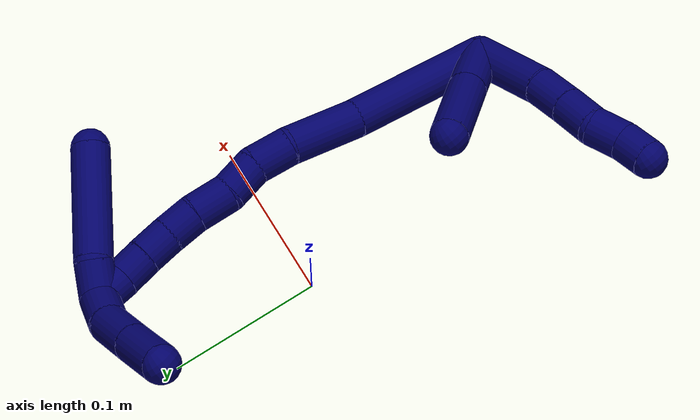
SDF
<sdf version="1.7">
 <world name="default">
  <model name="7">
   <static>0</static>
   <link name="7">
    <collision name="collision-cylinder-e_1_2_8">
     <pose>-0.022766 -0.010237 -0.013585 2.49582 -0.929106 -1.96418</pose>
     <geometry><cylinder><radius>0.0125</radius><length>0.056839</length></cylinder></geometry>
     <surface>
      <friction><ode><mu>1.16</mu><mu2>1.16</mu2><slip1>0</slip1><slip2>0</slip2></ode></friction>
      <contact><ode><kp>1e+06</kp><kd>1</kd><max_vel>0</max_vel><min_depth>0.001</min_depth></ode></contact>
     </surface>
    </collision>
    <visual name="visual-cylinder-e_1_2_8">
     <pose>-0.022766 -0.010237 -0.013585 2.49582 -0.929106 -1.96418</pose>
     <geometry><cylinder><radius>0.0125</radius><length>0.056839</length></cylinder></geometry>
     <material><ambient>0.003922 0 0.403922 1</ambient></material>
    </visual>
    <collision name="collision-cylinder-e_2_8_9">
     <pose>-0.055529 -0.023787 -0.034579 2.72114 -0.888887 -2.2991</pose>
     <geometry><cylinder><radius>0.0125</radius><length>0.025753</length></cylinder></geometry>
     <surface>
      <friction><ode><mu>1.16</mu><mu2>1.16</mu2><slip1>0</slip1><slip2>0</slip2></ode></friction>
      <contact><ode><kp>1e+06</kp><kd>1</kd><max_vel>0</max_vel><min_depth>0.001</min_depth></ode></contact>
     </surface>
    </collision>
    <visual name="visual-cylinder-e_2_8_9">
     <pose>-0.055529 -0.023787 -0.034579 2.72114 -0.888887 -2.2991</pose>
     <geometry><cylinder><radius>0.0125</radius><length>0.025753</length></cylinder></geometry>
     <material><ambient>0.003922 0 0.403922 1</ambient></material>
    </visual>
    <collision name="collision-cylinder-e_3_9_10">
     <pose>-0.075103 -0.029929 -0.049197 2.76762 -0.890806 -2.38696</pose>
     <geometry><cylinder><radius>0.0125</radius><length>0.024632</length></cylinder></geometry>
     <surface>
      <friction><ode><mu>1.16</mu><mu2>1.16</mu2><slip1>0</slip1><slip2>0</slip2></ode></friction>
      <contact><ode><kp>1e+06</kp><kd>1</kd><max_vel>0</max_vel><min_depth>0.001</min_depth></ode></contact>
     </surface>
    </collision>
    <visual name="visual-cylinder-e_3_9_10">
     <pose>-0.075103 -0.029929 -0.049197 2.76762 -0.890806 -2.38696</pose>
     <geometry><cylinder><radius>0.0125</radius><length>0.024632</length></cylinder></geometry>
     <material><ambient>0.003922 0 0.403922 1</ambient></material>
    </visual>
    <collision name="collision-cylinder-e_4_10_11">
     <pose>-0.090725 -0.037728 -0.064366 2.58338 -0.572244 -1.597</pose>
     <geometry><cylinder><radius>0.0125</radius><length>0.022326</length></cylinder></geometry>
     <surface>
      <friction><ode><mu>1.16</mu><mu2>1.16</mu2><slip1>0</slip1><slip2>0</slip2></ode></friction>
      <contact><ode><kp>1e+06</kp><kd>1</kd><max_vel>0</max_vel><min_depth>0.001</min_depth></ode></contact>
     </surface>
    </collision>
    <visual name="visual-cylinder-e_4_10_11">
     <pose>-0.090725 -0.037728 -0.064366 2.58338 -0.572244 -1.597</pose>
     <geometry><cylinder><radius>0.0125</radius><length>0.022326</length></cylinder></geometry>
     <material><ambient>0.003922 0 0.403922 1</ambient></material>
    </visual>
    <collision name="collision-cylinder-e_5_11_6">
     <pose>-0.10412 -0.045529 -0.078847 2.73218 -0.802052 -2.23091</pose>
     <geometry><cylinder><radius>0.0125</radius><length>0.02045</length></cylinder></geometry>
     <surface>
      <friction><ode><mu>1.16</mu><mu2>1.16</mu2><slip1>0</slip1><slip2>0</slip2></ode></friction>
      <contact><ode><kp>1e+06</kp><kd>1</kd><max_vel>0</max_vel><min_depth>0.001</min_depth></ode></contact>
     </surface>
    </collision>
    <visual name="visual-cylinder-e_5_11_6">
     <pose>-0.10412 -0.045529 -0.078847 2.73218 -0.802052 -2.23091</pose>
     <geometry><cylinder><radius>0.0125</radius><length>0.02045</length></cylinder></geometry>
     <material><ambient>0.003922 0 0.403922 1</ambient></material>
    </visual>
    <collision name="collision-cylinder-e_1_2_12">
     <pose>-0.019712 0.00897 -0.000956 -1.67697 -1.14159 1.24033</pose>
     <geometry><cylinder><radius>0.0125</radius><length>0.043356</length></cylinder></geometry>
     <surface>
      <friction><ode><mu>1.16</mu><mu2>1.16</mu2><slip1>0</slip1><slip2>0</slip2></ode></friction>
      <contact><ode><kp>1e+06</kp><kd>1</kd><max_vel>0</max_vel><min_depth>0.001</min_depth></ode></contact>
     </surface>
    </collision>
    <visual name="visual-cylinder-e_1_2_12">
     <pose>-0.019712 0.00897 -0.000956 -1.67697 -1.14159 1.24033</pose>
     <geometry><cylinder><radius>0.0125</radius><length>0.043356</length></cylinder></geometry>
     <material><ambient>0.003922 0 0.403922 1</ambient></material>
    </visual>
    <collision name="collision-cylinder-e_2_12_5">
     <pose>-0.06521 0.029583 -0.003205 -1.68142 -1.1444 1.2475</pose>
     <geometry><cylinder><radius>0.0125</radius><length>0.056644</length></cylinder></geometry>
     <surface>
      <friction><ode><mu>1.16</mu><mu2>1.16</mu2><slip1>0</slip1><slip2>0</slip2></ode></friction>
      <contact><ode><kp>1e+06</kp><kd>1</kd><max_vel>0</max_vel><min_depth>0.001</min_depth></ode></contact>
     </surface>
    </collision>
    <visual name="visual-cylinder-e_2_12_5">
     <pose>-0.06521 0.029583 -0.003205 -1.68142 -1.1444 1.2475</pose>
     <geometry><cylinder><radius>0.0125</radius><length>0.056644</length></cylinder></geometry>
     <material><ambient>0.003922 0 0.403922 1</ambient></material>
    </visual>
    <collision name="collision-cylinder-e_1_2_13">
     <pose>-0.016479 0.042917 0.012243 -1.2929 -0.353707 0.268116</pose>
     <geometry><cylinder><radius>0.0125</radius><length>0.095149</length></cylinder></geometry>
     <surface>
      <friction><ode><mu>1.16</mu><mu2>1.16</mu2><slip1>0</slip1><slip2>0</slip2></ode></friction>
      <contact><ode><kp>1e+06</kp><kd>1</kd><max_vel>0</max_vel><min_depth>0.001</min_depth></ode></contact>
     </surface>
    </collision>
    <visual name="visual-cylinder-e_1_2_13">
     <pose>-0.016479 0.042917 0.012243 -1.2929 -0.353707 0.268116</pose>
     <geometry><cylinder><radius>0.0125</radius><length>0.095149</length></cylinder></geometry>
     <material><ambient>0.003922 0 0.403922 1</ambient></material>
    </visual>
    <collision name="collision-cylinder-e_2_13_14">
     <pose>-0.042699 0.10667 0.032732 -1.19398 -0.410074 0.28085</pose>
     <geometry><cylinder><radius>0.0125</radius><length>0.048867</length></cylinder></geometry>
     <surface>
      <friction><ode><mu>1.16</mu><mu2>1.16</mu2><slip1>0</slip1><slip2>0</slip2></ode></friction>
      <contact><ode><kp>1e+06</kp><kd>1</kd><max_vel>0</max_vel><min_depth>0.001</min_depth></ode></contact>
     </surface>
    </collision>
    <visual name="visual-cylinder-e_2_13_14">
     <pose>-0.042699 0.10667 0.032732 -1.19398 -0.410074 0.28085</pose>
     <geometry><cylinder><radius>0.0125</radius><length>0.048867</length></cylinder></geometry>
     <material><ambient>0.003922 0 0.403922 1</ambient></material>
    </visual>
    <collision name="collision-cylinder-e_3_14_15">
     <pose>-0.055675 0.139575 0.04351 -1.36387 -0.256554 0.208677</pose>
     <geometry><cylinder><radius>0.0125</radius><length>0.025498</length></cylinder></geometry>
     <surface>
      <friction><ode><mu>1.16</mu><mu2>1.16</mu2><slip1>0</slip1><slip2>0</slip2></ode></friction>
      <contact><ode><kp>1e+06</kp><kd>1</kd><max_vel>0</max_vel><min_depth>0.001</min_depth></ode></contact>
     </surface>
    </collision>
    <visual name="visual-cylinder-e_3_14_15">
     <pose>-0.055675 0.139575 0.04351 -1.36387 -0.256554 0.208677</pose>
     <geometry><cylinder><radius>0.0125</radius><length>0.025498</length></cylinder></geometry>
     <material><ambient>0.003922 0 0.403922 1</ambient></material>
    </visual>
    <collision name="collision-cylinder-e_4_15_16">
     <pose>-0.063799 0.162534 0.045179 -1.65006 -0.420814 0.454422</pose>
     <geometry><cylinder><radius>0.0125</radius><length>0.023938</length></cylinder></geometry>
     <surface>
      <friction><ode><mu>1.16</mu><mu2>1.16</mu2><slip1>0</slip1><slip2>0</slip2></ode></friction>
      <contact><ode><kp>1e+06</kp><kd>1</kd><max_vel>0</max_vel><min_depth>0.001</min_depth></ode></contact>
     </surface>
    </collision>
    <visual name="visual-cylinder-e_4_15_16">
     <pose>-0.063799 0.162534 0.045179 -1.65006 -0.420814 0.454422</pose>
     <geometry><cylinder><radius>0.0125</radius><length>0.023938</length></cylinder></geometry>
     <material><ambient>0.003922 0 0.403922 1</ambient></material>
    </visual>
    <collision name="collision-cylinder-e_5_16_17">
     <pose>-0.072179 0.18551 0.04635 -1.4039 -0.277413 0.235017</pose>
     <geometry><cylinder><radius>0.0125</radius><length>0.025488</length></cylinder></geometry>
     <surface>
      <friction><ode><mu>1.16</mu><mu2>1.16</mu2><slip1>0</slip1><slip2>0</slip2></ode></friction>
      <contact><ode><kp>1e+06</kp><kd>1</kd><max_vel>0</max_vel><min_depth>0.001</min_depth></ode></contact>
     </surface>
    </collision>
    <visual name="visual-cylinder-e_5_16_17">
     <pose>-0.072179 0.18551 0.04635 -1.4039 -0.277413 0.235017</pose>
     <geometry><cylinder><radius>0.0125</radius><length>0.025488</length></cylinder></geometry>
     <material><ambient>0.003922 0 0.403922 1</ambient></material>
    </visual>
    <collision name="collision-cylinder-e_6_17_18">
     <pose>-0.078522 0.207329 0.04862 -1.54675 -0.285058 0.278372</pose>
     <geometry><cylinder><radius>0.0125</radius><length>0.020288</length></cylinder></geometry>
     <surface>
      <friction><ode><mu>1.16</mu><mu2>1.16</mu2><slip1>0</slip1><slip2>0</slip2></ode></friction>
      <contact><ode><kp>1e+06</kp><kd>1</kd><max_vel>0</max_vel><min_depth>0.001</min_depth></ode></contact>
     </surface>
    </collision>
    <visual name="visual-cylinder-e_6_17_18">
     <pose>-0.078522 0.207329 0.04862 -1.54675 -0.285058 0.278372</pose>
     <geometry><cylinder><radius>0.0125</radius><length>0.020288</length></cylinder></geometry>
     <material><ambient>0.003922 0 0.403922 1</ambient></material>
    </visual>
    <collision name="collision-cylinder-e_7_18_19">
     <pose>-0.08505 0.226669 0.048841 -1.57214 -0.365423 0.365904</pose>
     <geometry><cylinder><radius>0.0125</radius><length>0.020575</length></cylinder></geometry>
     <surface>
      <friction><ode><mu>1.16</mu><mu2>1.16</mu2><slip1>0</slip1><slip2>0</slip2></ode></friction>
      <contact><ode><kp>1e+06</kp><kd>1</kd><max_vel>0</max_vel><min_depth>0.001</min_depth></ode></contact>
     </surface>
    </collision>
    <visual name="visual-cylinder-e_7_18_19">
     <pose>-0.08505 0.226669 0.048841 -1.57214 -0.365423 0.365904</pose>
     <geometry><cylinder><radius>0.0125</radius><length>0.020575</length></cylinder></geometry>
     <material><ambient>0.003922 0 0.403922 1</ambient></material>
    </visual>
    <collision name="collision-cylinder-e_8_19_20">
     <pose>-0.092352 0.245683 0.048316 -1.62519 -0.36742 0.387471</pose>
     <geometry><cylinder><radius>0.0125</radius><length>0.020186</length></cylinder></geometry>
     <surface>
      <friction><ode><mu>1.16</mu><mu2>1.16</mu2><slip1>0</slip1><slip2>0</slip2></ode></friction>
      <contact><ode><kp>1e+06</kp><kd>1</kd><max_vel>0</max_vel><min_depth>0.001</min_depth></ode></contact>
     </surface>
    </collision>
    <visual name="visual-cylinder-e_8_19_20">
     <pose>-0.092352 0.245683 0.048316 -1.62519 -0.36742 0.387471</pose>
     <geometry><cylinder><radius>0.0125</radius><length>0.020186</length></cylinder></geometry>
     <material><ambient>0.003922 0 0.403922 1</ambient></material>
    </visual>
    <collision name="collision-cylinder-e_9_20_1">
     <pose>-0.101967 0.263058 0.048654 -1.46462 -0.641738 0.580739</pose>
     <geometry><cylinder><radius>0.0125</radius><length>0.02001</length></cylinder></geometry>
     <surface>
      <friction><ode><mu>1.16</mu><mu2>1.16</mu2><slip1>0</slip1><slip2>0</slip2></ode></friction>
      <contact><ode><kp>1e+06</kp><kd>1</kd><max_vel>0</max_vel><min_depth>0.001</min_depth></ode></contact>
     </surface>
    </collision>
    <visual name="visual-cylinder-e_9_20_1">
     <pose>-0.101967 0.263058 0.048654 -1.46462 -0.641738 0.580739</pose>
     <geometry><cylinder><radius>0.0125</radius><length>0.02001</length></cylinder></geometry>
     <material><ambient>0.003922 0 0.403922 1</ambient></material>
    </visual>
    <collision name="collision-cylinder-e_1_1_21">
     <pose>-0.12158 0.270971 0.045082 3.12875 -1.257 -3.12392</pose>
     <geometry><cylinder><radius>0.0125</radius><length>0.028648</length></cylinder></geometry>
     <surface>
      <friction><ode><mu>1.16</mu><mu2>1.16</mu2><slip1>0</slip1><slip2>0</slip2></ode></friction>
      <contact><ode><kp>1e+06</kp><kd>1</kd><max_vel>0</max_vel><min_depth>0.001</min_depth></ode></contact>
     </surface>
    </collision>
    <visual name="visual-cylinder-e_1_1_21">
     <pose>-0.12158 0.270971 0.045082 3.12875 -1.257 -3.12392</pose>
     <geometry><cylinder><radius>0.0125</radius><length>0.028648</length></cylinder></geometry>
     <material><ambient>0.003922 0 0.403922 1</ambient></material>
    </visual>
    <collision name="collision-cylinder-e_2_21_22">
     <pose>-0.151186 0.265779 0.035607 2.34822 -1.14726 -1.99119</pose>
     <geometry><cylinder><radius>0.0125</radius><length>0.03506</length></cylinder></geometry>
     <surface>
      <friction><ode><mu>1.16</mu><mu2>1.16</mu2><slip1>0</slip1><slip2>0</slip2></ode></friction>
      <contact><ode><kp>1e+06</kp><kd>1</kd><max_vel>0</max_vel><min_depth>0.001</min_depth></ode></contact>
     </surface>
    </collision>
    <visual name="visual-cylinder-e_2_21_22">
     <pose>-0.151186 0.265779 0.035607 2.34822 -1.14726 -1.99119</pose>
     <geometry><cylinder><radius>0.0125</radius><length>0.03506</length></cylinder></geometry>
     <material><ambient>0.003922 0 0.403922 1</ambient></material>
    </visual>
    <collision name="collision-cylinder-e_3_22_4">
     <pose>-0.183622 0.255114 0.02527 2.33339 -1.13565 -1.96046</pose>
     <geometry><cylinder><radius>0.0125</radius><length>0.036292</length></cylinder></geometry>
     <surface>
      <friction><ode><mu>1.16</mu><mu2>1.16</mu2><slip1>0</slip1><slip2>0</slip2></ode></friction>
      <contact><ode><kp>1e+06</kp><kd>1</kd><max_vel>0</max_vel><min_depth>0.001</min_depth></ode></contact>
     </surface>
    </collision>
    <visual name="visual-cylinder-e_3_22_4">
     <pose>-0.183622 0.255114 0.02527 2.33339 -1.13565 -1.96046</pose>
     <geometry><cylinder><radius>0.0125</radius><length>0.036292</length></cylinder></geometry>
     <material><ambient>0.003922 0 0.403922 1</ambient></material>
    </visual>
    <collision name="collision-cylinder-e_1_1_23">
     <pose>-0.103167 0.265956 0.058818 0.498547 0.424108 0.109503</pose>
     <geometry><cylinder><radius>0.0125</radius><length>0.023274</length></cylinder></geometry>
     <surface>
      <friction><ode><mu>1.16</mu><mu2>1.16</mu2><slip1>0</slip1><slip2>0</slip2></ode></friction>
      <contact><ode><kp>1e+06</kp><kd>1</kd><max_vel>0</max_vel><min_depth>0.001</min_depth></ode></contact>
     </surface>
    </collision>
    <visual name="visual-cylinder-e_1_1_23">
     <pose>-0.103167 0.265956 0.058818 0.498547 0.424108 0.109503</pose>
     <geometry><cylinder><radius>0.0125</radius><length>0.023274</length></cylinder></geometry>
     <material><ambient>0.003922 0 0.403922 1</ambient></material>
    </visual>
    <collision name="collision-cylinder-e_2_23_3">
     <pose>-0.073212 0.243722 0.091452 0.634494 0.715525 0.244276</pose>
     <geometry><cylinder><radius>0.0125</radius><length>0.076726</length></cylinder></geometry>
     <surface>
      <friction><ode><mu>1.16</mu><mu2>1.16</mu2><slip1>0</slip1><slip2>0</slip2></ode></friction>
      <contact><ode><kp>1e+06</kp><kd>1</kd><max_vel>0</max_vel><min_depth>0.001</min_depth></ode></contact>
     </surface>
    </collision>
    <visual name="visual-cylinder-e_2_23_3">
     <pose>-0.073212 0.243722 0.091452 0.634494 0.715525 0.244276</pose>
     <geometry><cylinder><radius>0.0125</radius><length>0.076726</length></cylinder></geometry>
     <material><ambient>0.003922 0 0.403922 1</ambient></material>
    </visual>
    <collision name="collision-sphere-3">
     <pose>-0.048045 0.226558 0.114771 0 -0 0</pose>
     <geometry><sphere><radius>0.0125</radius></sphere></geometry>
     <surface>
      <friction><ode><mu>1.16</mu><mu2>1.16</mu2><slip1>0</slip1><slip2>0</slip2></ode></friction>
      <contact><ode><kp>1e+06</kp><kd>1</kd><max_vel>0</max_vel><min_depth>0.001</min_depth></ode></contact>
     </surface>
    </collision>
    <visual name="visual-sphere-3">
     <pose>-0.048045 0.226558 0.114771 0 -0 0</pose>
     <geometry><sphere><radius>0.0125</radius></sphere></geometry>
     <material><ambient>0.003922 0 0.403922 1</ambient></material>
    </visual>
    <collision name="collision-sphere-23">
     <pose>-0.098378 0.260885 0.068133 0 -0 0</pose>
     <geometry><sphere><radius>0.0125</radius></sphere></geometry>
     <surface>
      <friction><ode><mu>1.16</mu><mu2>1.16</mu2><slip1>0</slip1><slip2>0</slip2></ode></friction>
      <contact><ode><kp>1e+06</kp><kd>1</kd><max_vel>0</max_vel><min_depth>0.001</min_depth></ode></contact>
     </surface>
    </collision>
    <visual name="visual-sphere-23">
     <pose>-0.098378 0.260885 0.068133 0 -0 0</pose>
     <geometry><sphere><radius>0.0125</radius></sphere></geometry>
     <material><ambient>0.003922 0 0.403922 1</ambient></material>
    </visual>
    <collision name="collision-sphere-4">
     <pose>-0.200077 0.249583 0.019985 0 -0 0</pose>
     <geometry><sphere><radius>0.0125</radius></sphere></geometry>
     <surface>
      <friction><ode><mu>1.16</mu><mu2>1.16</mu2><slip1>0</slip1><slip2>0</slip2></ode></friction>
      <contact><ode><kp>1e+06</kp><kd>1</kd><max_vel>0</max_vel><min_depth>0.001</min_depth></ode></contact>
     </surface>
    </collision>
    <visual name="visual-sphere-4">
     <pose>-0.200077 0.249583 0.019985 0 -0 0</pose>
     <geometry><sphere><radius>0.0125</radius></sphere></geometry>
     <material><ambient>0.003922 0 0.403922 1</ambient></material>
    </visual>
    <collision name="collision-sphere-22">
     <pose>-0.167166 0.260644 0.030554 0 -0 0</pose>
     <geometry><sphere><radius>0.0125</radius></sphere></geometry>
     <surface>
      <friction><ode><mu>1.16</mu><mu2>1.16</mu2><slip1>0</slip1><slip2>0</slip2></ode></friction>
      <contact><ode><kp>1e+06</kp><kd>1</kd><max_vel>0</max_vel><min_depth>0.001</min_depth></ode></contact>
     </surface>
    </collision>
    <visual name="visual-sphere-22">
     <pose>-0.167166 0.260644 0.030554 0 -0 0</pose>
     <geometry><sphere><radius>0.0125</radius></sphere></geometry>
     <material><ambient>0.003922 0 0.403922 1</ambient></material>
    </visual>
    <collision name="collision-sphere-21">
     <pose>-0.135205 0.270914 0.040661 0 -0 0</pose>
     <geometry><sphere><radius>0.0125</radius></sphere></geometry>
     <surface>
      <friction><ode><mu>1.16</mu><mu2>1.16</mu2><slip1>0</slip1><slip2>0</slip2></ode></friction>
      <contact><ode><kp>1e+06</kp><kd>1</kd><max_vel>0</max_vel><min_depth>0.001</min_depth></ode></contact>
     </surface>
    </collision>
    <visual name="visual-sphere-21">
     <pose>-0.135205 0.270914 0.040661 0 -0 0</pose>
     <geometry><sphere><radius>0.0125</radius></sphere></geometry>
     <material><ambient>0.003922 0 0.403922 1</ambient></material>
    </visual>
    <collision name="collision-sphere-1">
     <pose>-0.107956 0.271028 0.049503 0 -0 0</pose>
     <geometry><sphere><radius>0.0125</radius></sphere></geometry>
     <surface>
      <friction><ode><mu>1.16</mu><mu2>1.16</mu2><slip1>0</slip1><slip2>0</slip2></ode></friction>
      <contact><ode><kp>1e+06</kp><kd>1</kd><max_vel>0</max_vel><min_depth>0.001</min_depth></ode></contact>
     </surface>
    </collision>
    <visual name="visual-sphere-1">
     <pose>-0.107956 0.271028 0.049503 0 -0 0</pose>
     <geometry><sphere><radius>0.0125</radius></sphere></geometry>
     <material><ambient>0.003922 0 0.403922 1</ambient></material>
    </visual>
    <collision name="collision-sphere-6">
     <pose>-0.111469 -0.048359 -0.085369 0 -0 0</pose>
     <geometry><sphere><radius>0.0125</radius></sphere></geometry>
     <surface>
      <friction><ode><mu>1.16</mu><mu2>1.16</mu2><slip1>0</slip1><slip2>0</slip2></ode></friction>
      <contact><ode><kp>1e+06</kp><kd>1</kd><max_vel>0</max_vel><min_depth>0.001</min_depth></ode></contact>
     </surface>
    </collision>
    <visual name="visual-sphere-6">
     <pose>-0.111469 -0.048359 -0.085369 0 -0 0</pose>
     <geometry><sphere><radius>0.0125</radius></sphere></geometry>
     <material><ambient>0.003922 0 0.403922 1</ambient></material>
    </visual>
    <collision name="collision-sphere-11">
     <pose>-0.09677 -0.042699 -0.072326 0 -0 0</pose>
     <geometry><sphere><radius>0.0125</radius></sphere></geometry>
     <surface>
      <friction><ode><mu>1.16</mu><mu2>1.16</mu2><slip1>0</slip1><slip2>0</slip2></ode></friction>
      <contact><ode><kp>1e+06</kp><kd>1</kd><max_vel>0</max_vel><min_depth>0.001</min_depth></ode></contact>
     </surface>
    </collision>
    <visual name="visual-sphere-11">
     <pose>-0.09677 -0.042699 -0.072326 0 -0 0</pose>
     <geometry><sphere><radius>0.0125</radius></sphere></geometry>
     <material><ambient>0.003922 0 0.403922 1</ambient></material>
    </visual>
    <collision name="collision-sphere-10">
     <pose>-0.08468 -0.032758 -0.056406 0 -0 0</pose>
     <geometry><sphere><radius>0.0125</radius></sphere></geometry>
     <surface>
      <friction><ode><mu>1.16</mu><mu2>1.16</mu2><slip1>0</slip1><slip2>0</slip2></ode></friction>
      <contact><ode><kp>1e+06</kp><kd>1</kd><max_vel>0</max_vel><min_depth>0.001</min_depth></ode></contact>
     </surface>
    </collision>
    <visual name="visual-sphere-10">
     <pose>-0.08468 -0.032758 -0.056406 0 -0 0</pose>
     <geometry><sphere><radius>0.0125</radius></sphere></geometry>
     <material><ambient>0.003922 0 0.403922 1</ambient></material>
    </visual>
    <collision name="collision-sphere-9">
     <pose>-0.065526 -0.027099 -0.041988 0 -0 0</pose>
     <geometry><sphere><radius>0.0125</radius></sphere></geometry>
     <surface>
      <friction><ode><mu>1.16</mu><mu2>1.16</mu2><slip1>0</slip1><slip2>0</slip2></ode></friction>
      <contact><ode><kp>1e+06</kp><kd>1</kd><max_vel>0</max_vel><min_depth>0.001</min_depth></ode></contact>
     </surface>
    </collision>
    <visual name="visual-sphere-9">
     <pose>-0.065526 -0.027099 -0.041988 0 -0 0</pose>
     <geometry><sphere><radius>0.0125</radius></sphere></geometry>
     <material><ambient>0.003922 0 0.403922 1</ambient></material>
    </visual>
    <collision name="collision-sphere-2">
     <geometry><sphere><radius>0.0125</radius></sphere></geometry>
     <surface>
      <friction><ode><mu>1.16</mu><mu2>1.16</mu2><slip1>0</slip1><slip2>0</slip2></ode></friction>
      <contact><ode><kp>1e+06</kp><kd>1</kd><max_vel>0</max_vel><min_depth>0.001</min_depth></ode></contact>
     </surface>
    </collision>
    <visual name="visual-sphere-2">
     <geometry><sphere><radius>0.0125</radius></sphere></geometry>
     <material><ambient>0.003922 0 0.403922 1</ambient></material>
    </visual>
    <collision name="collision-sphere-19">
     <pose>-0.088727 0.236277 0.048829 0 -0 0</pose>
     <geometry><sphere><radius>0.0125</radius></sphere></geometry>
     <surface>
      <friction><ode><mu>1.16</mu><mu2>1.16</mu2><slip1>0</slip1><slip2>0</slip2></ode></friction>
      <contact><ode><kp>1e+06</kp><kd>1</kd><max_vel>0</max_vel><min_depth>0.001</min_depth></ode></contact>
     </surface>
    </collision>
    <visual name="visual-sphere-19">
     <pose>-0.088727 0.236277 0.048829 0 -0 0</pose>
     <geometry><sphere><radius>0.0125</radius></sphere></geometry>
     <material><ambient>0.003922 0 0.403922 1</ambient></material>
    </visual>
    <collision name="collision-sphere-8">
     <pose>-0.045533 -0.020474 -0.02717 0 -0 0</pose>
     <geometry><sphere><radius>0.0125</radius></sphere></geometry>
     <surface>
      <friction><ode><mu>1.16</mu><mu2>1.16</mu2><slip1>0</slip1><slip2>0</slip2></ode></friction>
      <contact><ode><kp>1e+06</kp><kd>1</kd><max_vel>0</max_vel><min_depth>0.001</min_depth></ode></contact>
     </surface>
    </collision>
    <visual name="visual-sphere-8">
     <pose>-0.045533 -0.020474 -0.02717 0 -0 0</pose>
     <geometry><sphere><radius>0.0125</radius></sphere></geometry>
     <material><ambient>0.003922 0 0.403922 1</ambient></material>
    </visual>
    <collision name="collision-sphere-12">
     <pose>-0.039423 0.017941 -0.001912 0 -0 0</pose>
     <geometry><sphere><radius>0.0125</radius></sphere></geometry>
     <surface>
      <friction><ode><mu>1.16</mu><mu2>1.16</mu2><slip1>0</slip1><slip2>0</slip2></ode></friction>
      <contact><ode><kp>1e+06</kp><kd>1</kd><max_vel>0</max_vel><min_depth>0.001</min_depth></ode></contact>
     </surface>
    </collision>
    <visual name="visual-sphere-12">
     <pose>-0.039423 0.017941 -0.001912 0 -0 0</pose>
     <geometry><sphere><radius>0.0125</radius></sphere></geometry>
     <material><ambient>0.003922 0 0.403922 1</ambient></material>
    </visual>
    <collision name="collision-sphere-5">
     <pose>-0.090996 0.041225 -0.004499 0 -0 0</pose>
     <geometry><sphere><radius>0.0125</radius></sphere></geometry>
     <surface>
      <friction><ode><mu>1.16</mu><mu2>1.16</mu2><slip1>0</slip1><slip2>0</slip2></ode></friction>
      <contact><ode><kp>1e+06</kp><kd>1</kd><max_vel>0</max_vel><min_depth>0.001</min_depth></ode></contact>
     </surface>
    </collision>
    <visual name="visual-sphere-5">
     <pose>-0.090996 0.041225 -0.004499 0 -0 0</pose>
     <geometry><sphere><radius>0.0125</radius></sphere></geometry>
     <material><ambient>0.003922 0 0.403922 1</ambient></material>
    </visual>
    <collision name="collision-sphere-13">
     <pose>-0.032958 0.085834 0.024486 0 -0 0</pose>
     <geometry><sphere><radius>0.0125</radius></sphere></geometry>
     <surface>
      <friction><ode><mu>1.16</mu><mu2>1.16</mu2><slip1>0</slip1><slip2>0</slip2></ode></friction>
      <contact><ode><kp>1e+06</kp><kd>1</kd><max_vel>0</max_vel><min_depth>0.001</min_depth></ode></contact>
     </surface>
    </collision>
    <visual name="visual-sphere-13">
     <pose>-0.032958 0.085834 0.024486 0 -0 0</pose>
     <geometry><sphere><radius>0.0125</radius></sphere></geometry>
     <material><ambient>0.003922 0 0.403922 1</ambient></material>
    </visual>
    <collision name="collision-sphere-14">
     <pose>-0.05244 0.127506 0.040977 0 -0 0</pose>
     <geometry><sphere><radius>0.0125</radius></sphere></geometry>
     <surface>
      <friction><ode><mu>1.16</mu><mu2>1.16</mu2><slip1>0</slip1><slip2>0</slip2></ode></friction>
      <contact><ode><kp>1e+06</kp><kd>1</kd><max_vel>0</max_vel><min_depth>0.001</min_depth></ode></contact>
     </surface>
    </collision>
    <visual name="visual-sphere-14">
     <pose>-0.05244 0.127506 0.040977 0 -0 0</pose>
     <geometry><sphere><radius>0.0125</radius></sphere></geometry>
     <material><ambient>0.003922 0 0.403922 1</ambient></material>
    </visual>
    <collision name="collision-sphere-15">
     <pose>-0.05891 0.151643 0.046044 0 -0 0</pose>
     <geometry><sphere><radius>0.0125</radius></sphere></geometry>
     <surface>
      <friction><ode><mu>1.16</mu><mu2>1.16</mu2><slip1>0</slip1><slip2>0</slip2></ode></friction>
      <contact><ode><kp>1e+06</kp><kd>1</kd><max_vel>0</max_vel><min_depth>0.001</min_depth></ode></contact>
     </surface>
    </collision>
    <visual name="visual-sphere-15">
     <pose>-0.05891 0.151643 0.046044 0 -0 0</pose>
     <geometry><sphere><radius>0.0125</radius></sphere></geometry>
     <material><ambient>0.003922 0 0.403922 1</ambient></material>
    </visual>
    <collision name="collision-sphere-16">
     <pose>-0.068689 0.173424 0.044314 0 -0 0</pose>
     <geometry><sphere><radius>0.0125</radius></sphere></geometry>
     <surface>
      <friction><ode><mu>1.16</mu><mu2>1.16</mu2><slip1>0</slip1><slip2>0</slip2></ode></friction>
      <contact><ode><kp>1e+06</kp><kd>1</kd><max_vel>0</max_vel><min_depth>0.001</min_depth></ode></contact>
     </surface>
    </collision>
    <visual name="visual-sphere-16">
     <pose>-0.068689 0.173424 0.044314 0 -0 0</pose>
     <geometry><sphere><radius>0.0125</radius></sphere></geometry>
     <material><ambient>0.003922 0 0.403922 1</ambient></material>
    </visual>
    <collision name="collision-sphere-17">
     <pose>-0.075669 0.197597 0.048386 0 -0 0</pose>
     <geometry><sphere><radius>0.0125</radius></sphere></geometry>
     <surface>
      <friction><ode><mu>1.16</mu><mu2>1.16</mu2><slip1>0</slip1><slip2>0</slip2></ode></friction>
      <contact><ode><kp>1e+06</kp><kd>1</kd><max_vel>0</max_vel><min_depth>0.001</min_depth></ode></contact>
     </surface>
    </collision>
    <visual name="visual-sphere-17">
     <pose>-0.075669 0.197597 0.048386 0 -0 0</pose>
     <geometry><sphere><radius>0.0125</radius></sphere></geometry>
     <material><ambient>0.003922 0 0.403922 1</ambient></material>
    </visual>
    <collision name="collision-sphere-18">
     <pose>-0.081374 0.217061 0.048854 0 -0 0</pose>
     <geometry><sphere><radius>0.0125</radius></sphere></geometry>
     <surface>
      <friction><ode><mu>1.16</mu><mu2>1.16</mu2><slip1>0</slip1><slip2>0</slip2></ode></friction>
      <contact><ode><kp>1e+06</kp><kd>1</kd><max_vel>0</max_vel><min_depth>0.001</min_depth></ode></contact>
     </surface>
    </collision>
    <visual name="visual-sphere-18">
     <pose>-0.081374 0.217061 0.048854 0 -0 0</pose>
     <geometry><sphere><radius>0.0125</radius></sphere></geometry>
     <material><ambient>0.003922 0 0.403922 1</ambient></material>
    </visual>
    <collision name="collision-sphere-20">
     <pose>-0.095978 0.255088 0.047804 0 -0 0</pose>
     <geometry><sphere><radius>0.0125</radius></sphere></geometry>
     <surface>
      <friction><ode><mu>1.16</mu><mu2>1.16</mu2><slip1>0</slip1><slip2>0</slip2></ode></friction>
      <contact><ode><kp>1e+06</kp><kd>1</kd><max_vel>0</max_vel><min_depth>0.001</min_depth></ode></contact>
     </surface>
    </collision>
    <visual name="visual-sphere-20">
     <pose>-0.095978 0.255088 0.047804 0 -0 0</pose>
     <geometry><sphere><radius>0.0125</radius></sphere></geometry>
     <material><ambient>0.003922 0 0.403922 1</ambient></material>
    </visual>
    <inertial>
     <pose>-0.069909 0.120208 0.02103 0 -0 0</pose>
     <mass>0.75</mass>
     <inertia><ixx>0.000114</ixx><ixy>0</ixy><ixz>0</ixz><iyy>0.000165</iyy><iyz>0</iyz><izz>-7e-06</izz></inertia>
    </inertial>
   </link>
   <pose>0.069262 -0.169532 0.01251 -0.474346 1.07834 -0.370407</pose>
  </model>
 </world>
</sdf>
